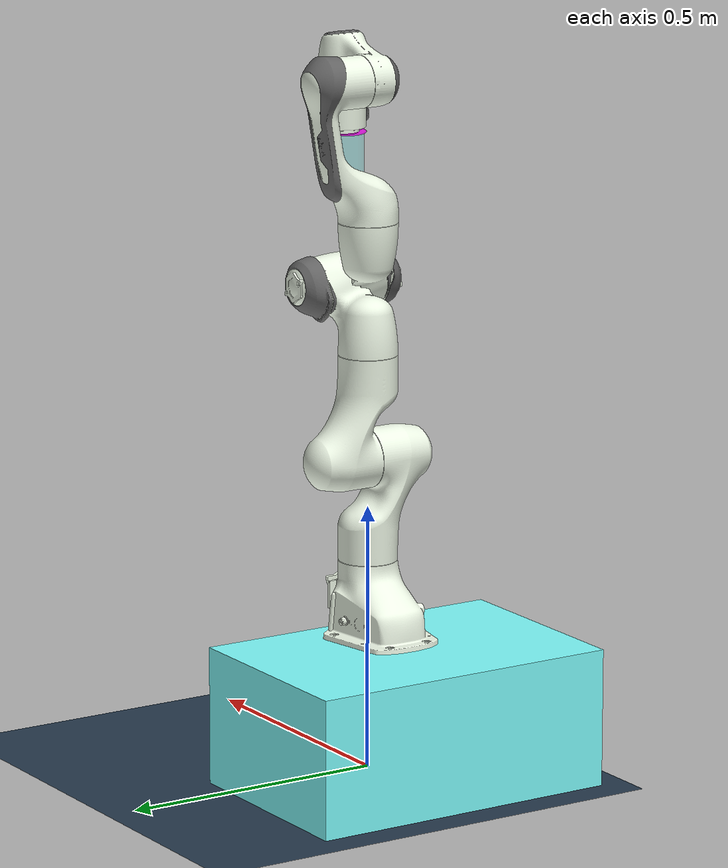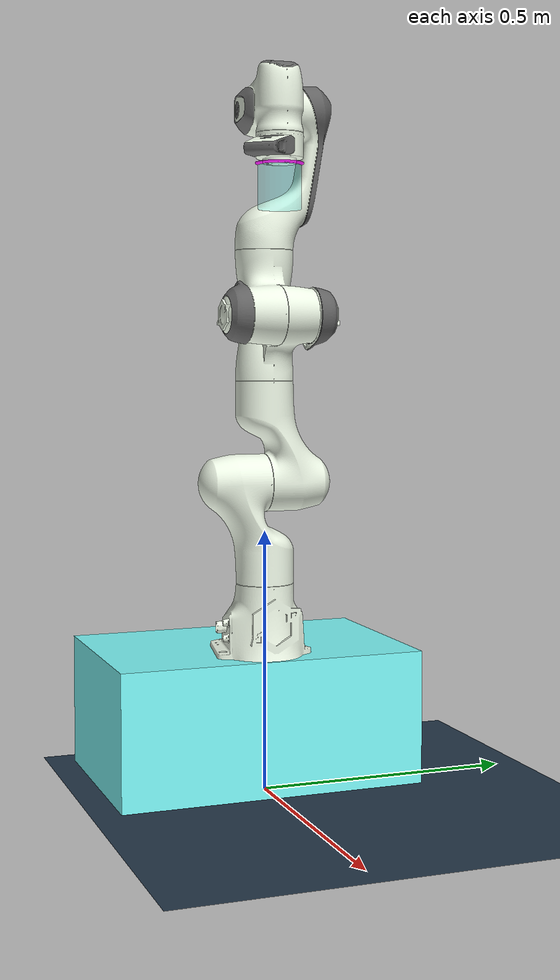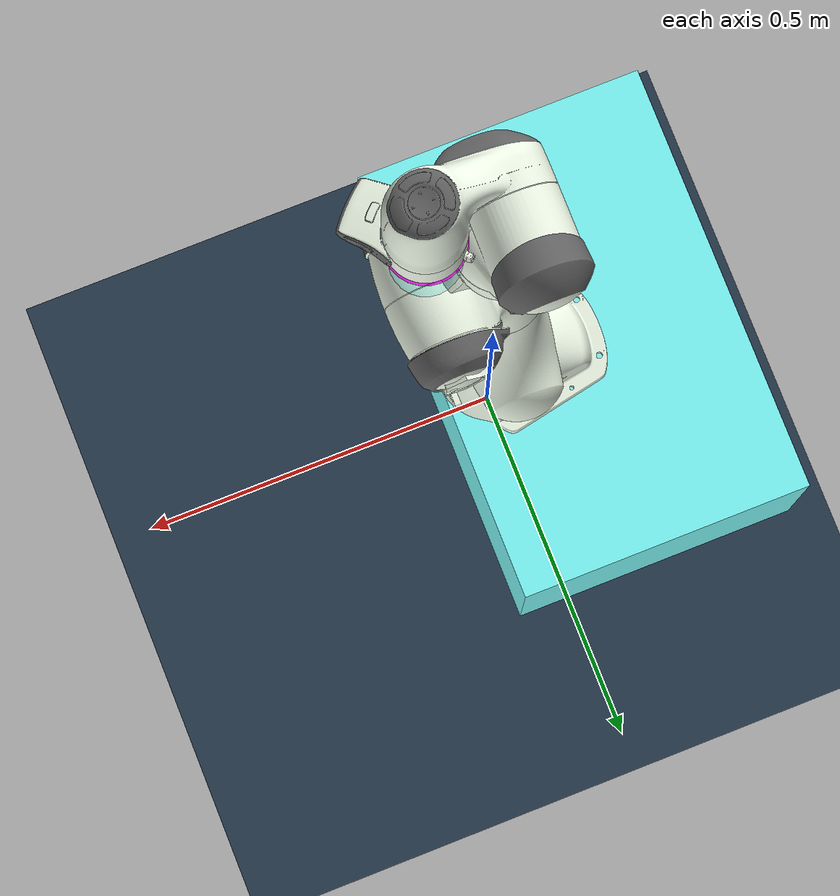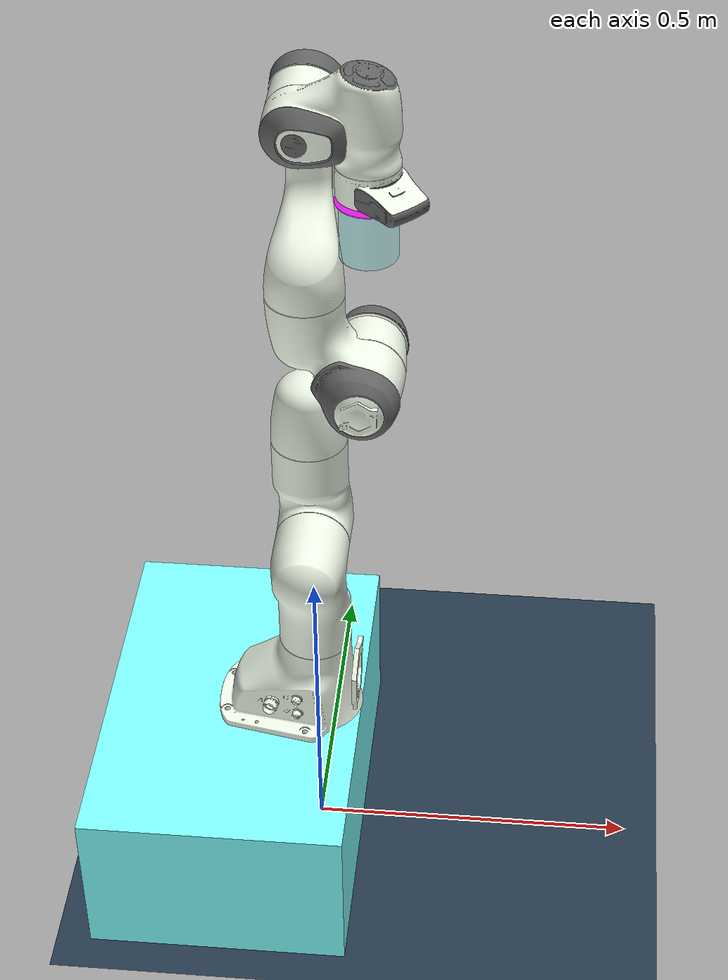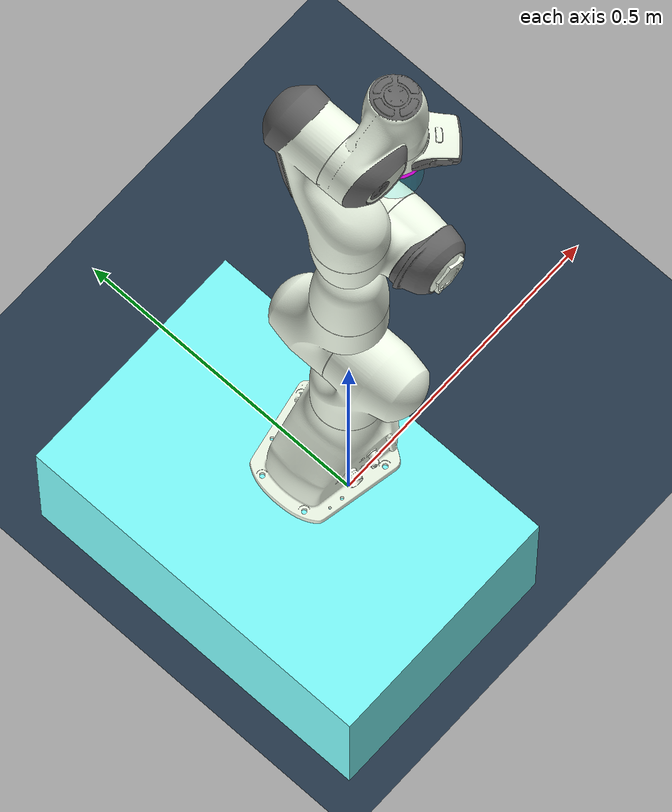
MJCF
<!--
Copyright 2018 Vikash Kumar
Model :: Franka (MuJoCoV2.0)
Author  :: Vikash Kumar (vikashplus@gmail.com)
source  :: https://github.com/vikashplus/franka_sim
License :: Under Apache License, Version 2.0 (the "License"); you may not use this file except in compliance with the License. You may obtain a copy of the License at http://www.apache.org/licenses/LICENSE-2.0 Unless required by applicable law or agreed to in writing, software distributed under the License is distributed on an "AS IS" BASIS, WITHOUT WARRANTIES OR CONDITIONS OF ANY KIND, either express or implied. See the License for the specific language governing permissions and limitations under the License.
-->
<?xml version="1.0" ?>
<mujoco model="franka_panda v200">

    <compiler angle="radian" coordinate="local" meshdir="/home/yxt/Research/code/EducationProject/curi_sim/description/Franka"/>
    <option gravity="0 0 -9.81" />
    <size nconmax="100" njmax="500" nuser_actuator="5"/>
    <default class="main">

        <default class="panda">

            <joint limited="true"/>
            <general biasprm="0 -1 0 0 0 0 0 0 0 0" biastype="affine" ctrllimited="true" forcelimited="true" user="1002 40 2001 -0.005 0.005"/>
            <default class="panda_viz">
                <geom conaffinity="0" contype="0" rgba="0.95 0.99 0.92 1" type="mesh"/>
                <general user="1002 40 2001 -0.005 0.005"/>
            </default>
            <default class="panda_col">
                <geom group="3" rgba="0.5 0.6 0.7 1" type="mesh"/>
                <general user="1002 40 2001 -0.005 0.005"/>
            </default>
            <default class="panda_grey_viz">
                <geom contype="0" conaffinity="0" group="0" type="mesh" rgba=".4 .4 .4 1" mass="0"/>
            </default>
            <default class="panda_arm">
                <joint damping="0.1"/>
                <general user="1002 40 2001 -0.005 0.005"/>
            </default>
            <default class="panda_forearm">
                <joint damping="0.01"/>
                <general user="1002 40 2001 -0.005 0.005"/>
            </default>
            <default class="panda_finger">
                <joint armature="5" damping="100"/>
                <geom conaffinity="0" condim="6" friction="1 0.5 0.0001" group="3" margin="0.001" rgba="0.5 0.6 0.7 0.4" solimp="0.8 0.9 0.001 0.5 2" solref="0.01 1"/>
                <general user="1002 40 2001 -0.0001 0.0001"/>
            </default>
        </default>
        <default class="panda_overlay">
            <joint armature="1" damping="1000" frictionloss="10"/>
            <geom conaffinity="0" contype="0" group="2" rgba="0.42 0.42 0.42 0.5" type="mesh"/>
        </default>
    </default>

    <asset>
        <texture type="skybox" builtin="gradient" rgb1="1 1 1" rgb2=".6 .8 1" width="256" height="256"/>
        <texture builtin="checker" height="512" name="texplane" rgb1="0.2 0.3 0.4" rgb2="0.1 0.15 0.2" type="2d" width="512"/>
        <material name="MatGnd" reflectance="0.3" texture="texplane" texuniform="true"/>
        <mesh file="./meshes/collision/link0.stl" name="link0_col"/>
        <mesh file="./meshes/collision/link1.stl" name="link1_col"/>
        <mesh file="./meshes/collision/link2.stl" name="link2_col"/>
        <mesh file="./meshes/collision/link3.stl" name="link3_col"/>
        <mesh file="./meshes/collision/link4.stl" name="link4_col"/>
        <mesh file="./meshes/collision/link5.stl" name="link5_col"/>
        <mesh file="./meshes/collision/link6.stl" name="link6_col"/>
        <mesh file="./meshes/collision/link7.stl" name="link7_col"/>
        <mesh file="./meshes/collision/hand.stl" name="hand_col"/>
        <mesh file="./meshes/visual/link0.stl" name="link0_viz"/>
        <mesh file="./meshes/visual/link1.stl" name="link1_viz"/>
        <mesh file="./meshes/visual/link2.stl" name="link2_viz"/>
        <mesh file="./meshes/visual/link3.stl" name="link3_viz"/>
        <mesh file="./meshes/visual/link4.stl" name="link4_viz"/>
        <mesh file="./meshes/visual/link5.stl" name="link5_viz"/>
        <mesh file="./meshes/visual/link6.stl" name="link6_viz"/>
        <mesh file="./meshes/visual/link7.stl" name="link7_viz"/>
        <mesh file="./meshes/visual/hand.stl" name="hand_viz"/>
        <mesh file="./meshes/visual/link3_dark.stl" name="link3_dark_viz" scale="1.01 1.01 1.01"/>
        <mesh file="./meshes/visual/link4_dark.stl" name="link4_dark_viz" scale="1.01 1.01 1.01"/>
        <mesh file="./meshes/visual/link5_dark.stl" name="link5_dark_viz" scale="1.01 1.01 1.01"/>
        <mesh file="./meshes/visual/link6_dark.stl" name="link6_dark_viz" scale="1.01 1.01 1.01"/>
        <mesh file="./meshes/visual/link7_dark.stl" name="link7_dark_viz" scale="1.01 1.01 1.01"/>
        <mesh file="./meshes/collision/finger.stl" name="finger_col" scale="1.75 1 1.75"/>
        <mesh file="./meshes/collision/finger.stl" name="finger_viz" scale="1.75 1 1.75"/>

    </asset>

    <worldbody>
        <camera name="cam" mode="fixed" pos="1.65 0 3.0" quat="0.683 0.183 0.183 0.683"/>
        <light diffuse="0.8 0.8 0.8" dir="-0.301511 -0.301511 -0.904534" specular="0.3 0.3 0.3" pos="1.5 1 3" castshadow="false"/>
        <light diffuse="0.8 0.8 0.8" dir="-0.301511 0.301511 -0.904534" specular="0.3 0.3 0.3" pos="1.5 -1 3" castshadow="false"/>
        <light diffuse="0.8 0.8 0.8" dir="0.316228 0 -0.948683" specular="0.3 0.3 0.3" pos="-1. 0 3" castshadow="false"/>
        <light diffuse="0.8 0.8 0.8" dir="0.316228 0 -0.948683" specular="0.3 0.3 0.3" pos="-1. -1 3" castshadow="false"/>

        <geom material="MatGnd" name="ground" size="5 5 10" type="plane"/>

        <body name="base" pos="0 0 0">
            <body name="controller_box" pos="0 0 0">
                <inertial diaginertia="1.71363 1.27988 0.809981" mass="46.64" pos="-0.325 0 -0.38"/>
                <geom pos="-0.13 0 0.13" size="0.2 0.3 0.13" type="box" name="controller_box_col" rgba="0.5 1.0 1.0 1"/>
            </body>
            <body name="panda0_link0" pos="0 0 0.26">
                <inertial diaginertia="0.122527 0.11364 0.0827785" mass="2.91242" pos="0 0 0"/>
                <geom name="link0_viz" class="panda_viz" mesh="link0_viz"/>
                <geom name="link0_col" class="panda_col" mesh="link0_col"/>
                <body name="panda0_link1" pos="0 0 0.333">
                    <inertial diaginertia="0.70337 0.70661 0.009117" mass="4.970684" pos="0.003875 0.002081 0"/>
                    <joint axis="0 0 1" class="panda_arm" name="panda0_joint1" pos="0 0 0" range="-2.8973 2.8973"/>
                    <geom name="link1_viz" class="panda_viz" mesh="link1_viz"/>
                    <geom name="link1_col" class="panda_col" mesh="link1_col"/>
                    <body name="panda0_link2" pos="0 0 0" quat="0.707107 -0.707107 0 0">
                        <inertial diaginertia="0.007962 0.02811 0.025995" mass="0.646926" pos="-3.141e-03 -2.872e-02 3.495e-03"/>
                        <joint axis="0 0 1" class="panda_arm" name="panda0_joint2" pos="0 0 0" range="-1.7628 1.7628"/>
                        <geom name="link2_viz" class="panda_viz" mesh="link2_viz"/>
                        <geom name="link2_col" class="panda_col" mesh="link2_col"/>
                        <body name="panda0_link3" pos="0 -0.316 0" quat="0.707107 0.707107 0 0">
                            <inertial diaginertia="0.037242 0.036155 0.01083" mass="3.228604" pos="2.7518e-02 3.9252e-02 -6.6502e-02"/>
                            <joint axis="0 0 1" class="panda_arm" name="panda0_joint3" pos="0 0 0" range="-2.8973 2.8973"/>
                            <geom name="link3_viz" class="panda_viz" mesh="link3_viz"/>
                            <geom class="panda_grey_viz" mesh="link3_dark_viz" pos="0 .001 0"/>
                            <geom name="link3_col" class="panda_col" mesh="link3_col"/>
                            <body name="panda0_link4" pos="0.0825 0 0" quat="0.707107 0.707107 0 0">
                                <inertial diaginertia="0.025853 0.019552 0.028323" mass="3.587895" pos="-5.317e-02 1.04419e-01 2.7454e-02"/>
                                <joint axis="0 0 1" class="panda_arm" name="panda0_joint4" pos="0 0 0" range="-3.0718 -0.4"/>
                                <geom name="link4_viz" class="panda_viz" mesh="link4_viz"/>
                                <geom class="panda_grey_viz" mesh="link4_dark_viz"/>
                                <geom name="link4_col" class="panda_col" mesh="link4_col"/>
                                <body name="panda0_link5" pos="-0.0825 0.384 0" quat="0.707107 -0.707107 0 0">
                                    <inertial diaginertia="0.035549 0.029474 0.008627" mass="1.225946" pos="-1.1953e-02 4.1065e-02 -3.8437e-02"/>
                                    <joint axis="0 0 1" class="panda_forearm" name="panda0_joint5" pos="0 0 0" range="-2.8973 2.8973"/>
                                    <geom name="link5_viz" class="panda_viz" mesh="link5_viz"/>
                                    <geom class="panda_grey_viz" mesh="link5_dark_viz"/>
                                    <geom name="link5_col" class="panda_col" mesh="link5_col"/>
                                    <body name="panda0_link6" pos="0 0 0" quat="0.707107 0.707107 0 0">
                                        <inertial diaginertia="0.001964 0.004354 0.005433" mass="1.666555" pos="6.0149e-02 -1.4117e-02 -1.0517e-02"/>
                                        <joint axis="0 0 1" class="panda_forearm" name="panda0_joint6" pos="0 0 0" range="-0.0873 3.8223"/>
                                        <geom name="link6_viz"  class="panda_viz" mesh="link6_viz"/>
                                        <geom class="panda_grey_viz" mesh="link6_dark_viz"/>
                                        <geom name="link6_col"  class="panda_col" mesh="link6_col"/>
                                        <body name="panda0_link7" pos="0.088 0 0" quat="0.707107 0.707107 0 0">
                                            <inertial diaginertia="0.012516 0.010027 0.004815" mass="7.35522e-01" pos="1.0517e-02 -4.252e-03 6.1597e-02"/>
                                            <joint axis="0 0 1" class="panda_forearm" name="panda0_joint7" pos="0 0 0" range="-2.8973 2.8973"/>
                                            <site name="ee_joint" quat="1 0 0 0" pos="0 0 0.106" type="cylinder" size="0.045 0.001" rgba="1 0 1 0.8" />
                                            <site name="sensor_range" quat="1 0 0 0" pos="0 0 0.15" type="cylinder" size="0.04 0.04" rgba="0 1 1 0.2" />
                                            <geom name="link7_viz" class="panda_viz" mesh="link7_viz"/>
                                            <geom class="panda_grey_viz" mesh="link7_dark_viz"/>
                                            <geom name="link7_col" class="panda_col" mesh="link7_col"/>

                                        </body>
                                    </body>
                                </body>
                            </body>
                        </body>
                    </body>
                </body>
            </body>
        </body>

    </worldbody>
    <actuator>
        <general ctrllimited="true" ctrlrange="-80 80" joint="panda0_joint1" name="panda0_joint1"/>
        <general ctrllimited="true" ctrlrange="-80 80" joint="panda0_joint2" name="panda0_joint2"/>
        <general ctrllimited="true" ctrlrange="-80 80" joint="panda0_joint3" name="panda0_joint3"/>
        <general ctrllimited="true" ctrlrange="-80 80" joint="panda0_joint4" name="panda0_joint4"/>
        <general ctrllimited="true" ctrlrange="-80 80" joint="panda0_joint5" name="panda0_joint5"/>
        <general ctrllimited="true" ctrlrange="-12 12" joint="panda0_joint6" name="panda0_joint6"/>
        <general ctrllimited="true" ctrlrange="-12 12" joint="panda0_joint7" name="panda0_joint7"/>
    </actuator>
    <sensor>
        <jointpos joint="panda0_joint1" name="fr_arm_jp1"/>
        <jointpos joint="panda0_joint2" name="fr_arm_jp2"/>
        <jointpos joint="panda0_joint3" name="fr_arm_jp3"/>
        <jointpos joint="panda0_joint4" name="fr_arm_jp4"/>
        <jointpos joint="panda0_joint5" name="fr_arm_jp5"/>
        <jointpos joint="panda0_joint6" name="fr_arm_jp6"/>
        <jointpos joint="panda0_joint7" name="fr_arm_jp7"/>

        <jointvel joint="panda0_joint1" name="fr_arm_jv1"/>
        <jointvel joint="panda0_joint2" name="fr_arm_jv2"/>
        <jointvel joint="panda0_joint3" name="fr_arm_jv3"/>
        <jointvel joint="panda0_joint4" name="fr_arm_jv4"/>
        <jointvel joint="panda0_joint5" name="fr_arm_jv5"/>
        <jointvel joint="panda0_joint6" name="fr_arm_jv6"/>
        <jointvel joint="panda0_joint7" name="fr_arm_jv7"/>

        <actuatorfrc actuator="panda0_joint1" name="fr_arm_jf1"/>
        <actuatorfrc actuator="panda0_joint2" name="fr_arm_jf2"/>
        <actuatorfrc actuator="panda0_joint3" name="fr_arm_jf3"/>
        <actuatorfrc actuator="panda0_joint4" name="fr_arm_jf4"/>
        <actuatorfrc actuator="panda0_joint5" name="fr_arm_jf5"/>
        <actuatorfrc actuator="panda0_joint6" name="fr_arm_jf6"/>
        <actuatorfrc actuator="panda0_joint7" name="fr_arm_jf7"/>
    </sensor>
</mujoco>
